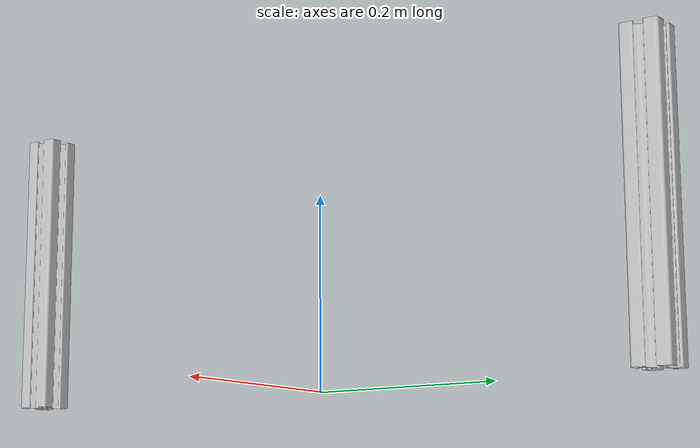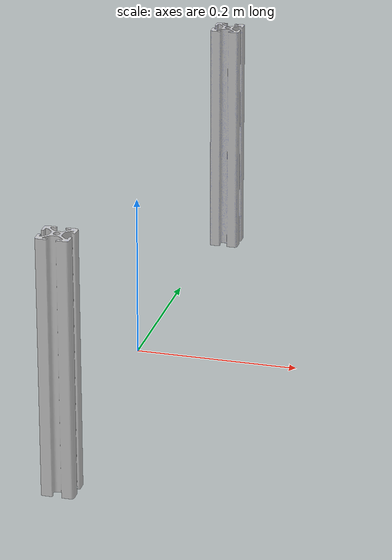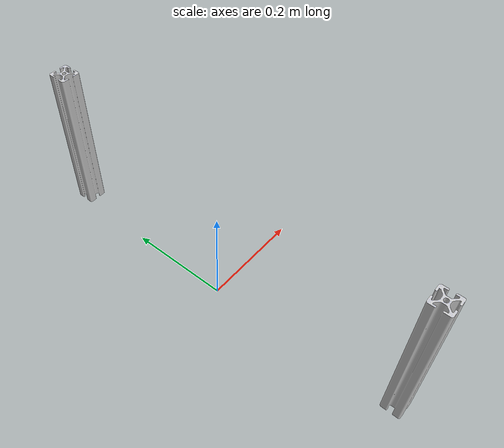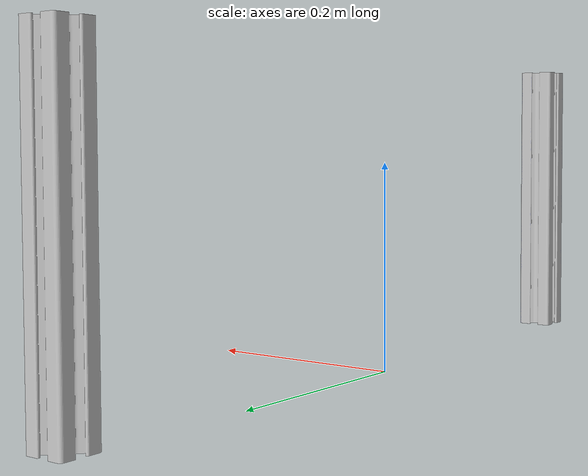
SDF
<?xml version="1.0" ?>
<sdf version="1.5">
  <model name="aluminum_extrusion">
    <static>true</static>
    <link name="link">
      <collision name="collision">
       <pose>0 -0.35 0 1.57 0 0</pose>
        <geometry>
          <surface>
          <friction>
            <ode>
              <mu>0.2</mu>
              <mu2>0.2</mu2>
            </ode>
          </friction>
          </surface>
          <mesh>
            <uri>model://aluminum_extrusion/meshes/model.dae</uri>
            <scale>1.5 2 1.5</scale>
          </mesh>
        </geometry>
      </collision>
      <visual name="visual">
        <pose>0 -0.35 0 1.57 0 0</pose>
        <geometry>
          <mesh>
            <uri>model://aluminum_extrusion/meshes/model.dae</uri>
            <scale>1.5 2 1.5</scale>
          </mesh>
        </geometry>
      </visual>
    </link>

    <link name="link2">
      <collision name="collision">
       <pose>0 0.39 0 1.57 0 0</pose>
        <geometry>
          <surface>
          <friction>
            <ode>
              <mu>0.2</mu>
              <mu2>0.2</mu2>
            </ode>
          </friction>
          </surface>
          <mesh>
            <uri>model://aluminum_extrusion/meshes/model.dae</uri>
            <scale>1.5 2 1.5</scale>
          </mesh>
        </geometry>
      </collision>
      <visual name="visual">
        <pose>0 0.39 0 1.57 0 0</pose>
        <geometry>
          <mesh>
            <uri>model://aluminum_extrusion/meshes/model.dae</uri>
            <scale>1.5 2 1.5</scale>
          </mesh>
        </geometry>
      </visual>
    </link>
  </model>

</sdf>
